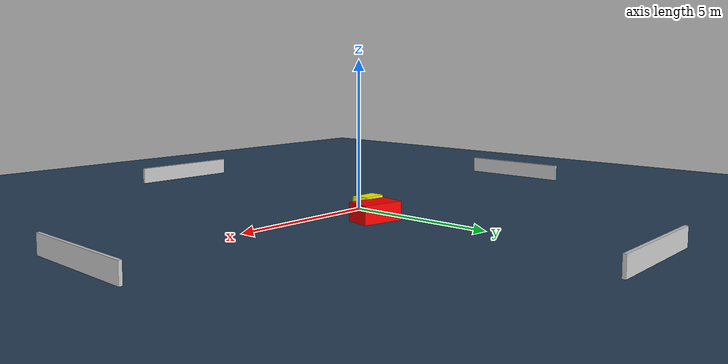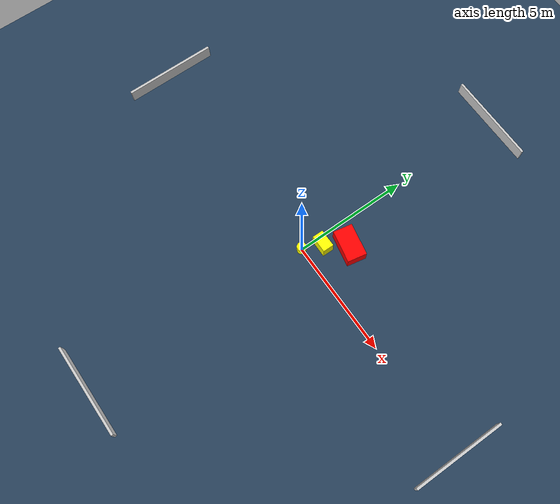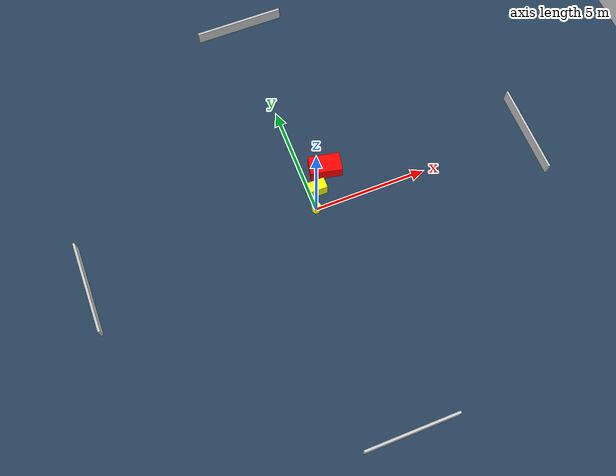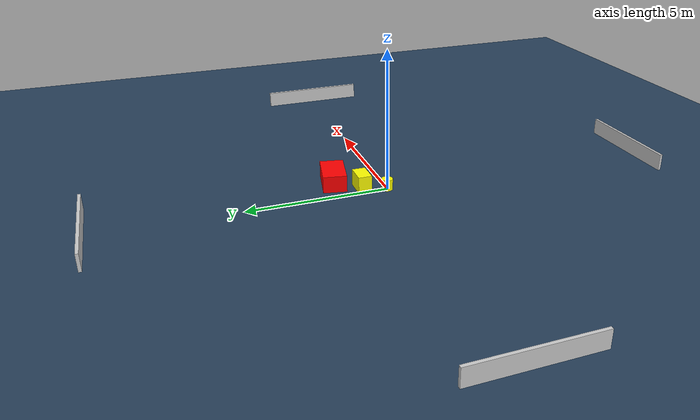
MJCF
<?xml version="1.0" ?>
<mujoco model="generated_environment">
  <option timestep="0.01" integrator="RK4" cone="elliptic"/>
  <default>
    <geom density="1"/>
  </default>
  <asset>
    <texture builtin="gradient" height="3072" name="skybox" rgb1="0.3 0.5 0.7" rgb2="0 0 0" type="skybox" width="512"/>
    <texture builtin="checker" height="300" name="groundplane" rgb1="0.2 0.3 0.4" rgb2="0.1 0.2 0.3" type="2d" width="300"/>
    <material name="groundplane" reflectance="0.2" texrepeat="5 5" texture="groundplane"/>
  </asset>
  <worldbody>
    <light dir="0 0 -1" directional="true" pos="0 0 1.5"/>
    <geom condim="3" friction="0.5 0.005 0.001" material="groundplane" name="floor" pos="0 0 0" size="0 0 0.05" type="plane"/>
    <body name="walls">
      <geom name="wall_1" condim="4" pos="-10.0 0.0 0.3" rgba="0.800000011920929 0.800000011920929 0.800000011920929 1.0" size="0.05 2.0 0.3" type="box"/>
      <geom name="wall_2" condim="4" pos="10.0 0.0 0.3" rgba="0.800000011920929 0.800000011920929 0.800000011920929 1.0" size="0.05 2.0 0.3" type="box"/>
      <geom name="wall_3" condim="4" pos="0.0 -10.0 0.3" rgba="0.800000011920929 0.800000011920929 0.800000011920929 1.0" size="2.0 0.05 0.3" type="box"/>
      <geom name="wall_4" condim="4" pos="0.0 10.0 0.3" rgba="0.800000011920929 0.800000011920929 0.800000011920929 1.0" size="2.0 0.05 0.3" type="box"/>
    </body>
    <body name="robot">
      <joint name="joint_x" type="slide" pos="0 0 0" axis="1 0 0"/>
      <joint name="joint_y" type="slide" pos="0 0 0" axis="0 1 0"/>
      <geom name="robot" type="cylinder" pos="0.0 0.0 0.2" size="0.2 0.2 0.0" mass="5.0" friction="1.0 0.005 0.0001" condim="4" rgba="1.0 1.0 0.0 1.0"/>
    </body>
    <body name="obstacle_1_movable">
      <geom name="obstacle_1_movable" condim="4" pos="0.3590906481101367 0.8050025999274806 0.3" euler="0 0 179.71744432722824" friction="0.0 0.005 0.001" rgba="1.0 1.0 0.0 1.0" size="0.380520761942037 0.23886744301053825 0.3" type="box" mass="0.1"/>
      <joint type="free"/>
    </body>
    <body name="obstacle_2_static">
      <geom name="obstacle_2_static" condim="4" pos="1.045914471482205 1.6445867572182131 0.3" euler="0 0 168.8636239976488" friction="0.0 0.005 0.001" rgba="1.0 0.0 0.0 1.0" size="0.6990278460428119 0.4167697687994314 0.3" type="box"/>
    </body>
  </worldbody>
  <actuator>
    <motor name="actuator_x" joint="joint_x" gear="1" ctrlrange="-1 1"/>
    <motor name="actuator_y" joint="joint_y" gear="1" ctrlrange="-1 1"/>
  </actuator>
</mujoco>
